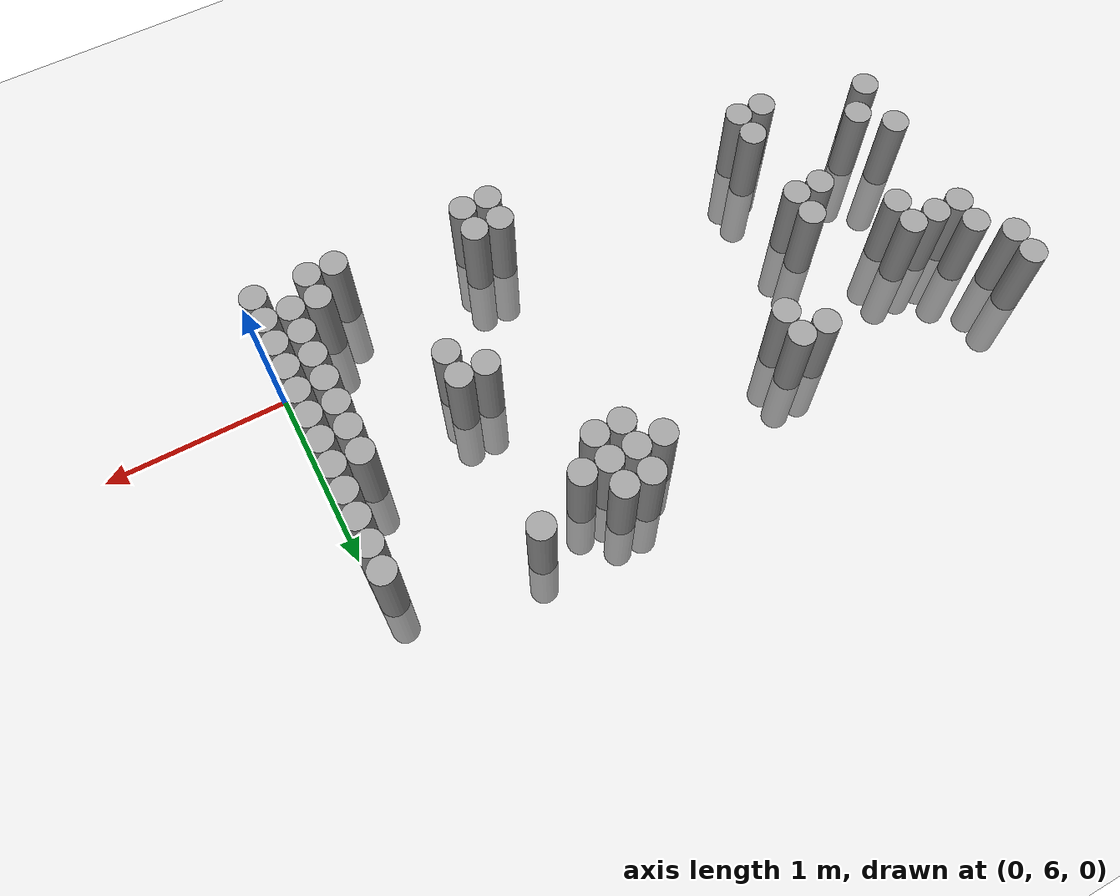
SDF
<sdf version="1.6">
 <world name="default">
  <model name="ground_plane">
   <static>1</static>
   <static>1</static>
   <link name="link">
    <collision name="collision">
     <geometry><plane><normal>0 0 1</normal><size>100 100</size></plane></geometry>
     <surface><friction><ode><mu>100</mu><mu2>50</mu2></ode></friction></surface>
    </collision>
    <visual name="visual">
     <cast_shadows>0</cast_shadows>
     <geometry><plane><normal>0 0 1</normal><size>100 100</size></plane></geometry>
     <material>
      <script><uri>file://media/materials/scripts/gazebo.material</uri><name>Gazebo/Grey</name></script>
     </material>
    </visual>
   </link>
  </model>
  <model name="unit_cylinder_163">
   <static>1</static>
   <pose>-3.825000 7.125000 0.000000 0.000000 0.000000 0.000000</pose>
   <link name="link">
    <inertial>
     <mass>1</mass>
     <inertia><ixx>0.145833</ixx><ixy>0</ixy><ixz>0</ixz><iyy>0.145833</iyy><iyz>0</iyz><izz>0.125</izz></inertia>
    </inertial>
    <collision name="collision">
     <geometry><cylinder><radius>0.075000</radius><length>1</length></cylinder></geometry>
    </collision>
    <visual name="visual">
     <geometry><cylinder><radius>0.075000</radius><length>1</length></cylinder></geometry>
     <material>
      <script><name>Gazebo/Grey</name><uri>file://media/materials/scripts/gazebo.material</uri></script>
     </material>
    </visual>
   </link>
  </model>
  <model name="unit_cylinder_164">
   <static>1</static>
   <pose>-3.825000 7.275000 0.000000 0.000000 0.000000 0.000000</pose>
   <link name="link">
    <inertial>
     <mass>1</mass>
     <inertia><ixx>0.145833</ixx><ixy>0</ixy><ixz>0</ixz><iyy>0.145833</iyy><iyz>0</iyz><izz>0.125</izz></inertia>
    </inertial>
    <collision name="collision">
     <geometry><cylinder><radius>0.075000</radius><length>1</length></cylinder></geometry>
    </collision>
    <visual name="visual">
     <geometry><cylinder><radius>0.075000</radius><length>1</length></cylinder></geometry>
     <material>
      <script><name>Gazebo/Grey</name><uri>file://media/materials/scripts/gazebo.material</uri></script>
     </material>
    </visual>
   </link>
  </model>
  <model name="unit_cylinder_170">
   <static>1</static>
   <pose>-3.675000 5.925000 0.000000 0.000000 0.000000 0.000000</pose>
   <link name="link">
    <inertial>
     <mass>1</mass>
     <inertia><ixx>0.145833</ixx><ixy>0</ixy><ixz>0</ixz><iyy>0.145833</iyy><iyz>0</iyz><izz>0.125</izz></inertia>
    </inertial>
    <collision name="collision">
     <geometry><cylinder><radius>0.075000</radius><length>1</length></cylinder></geometry>
    </collision>
    <visual name="visual">
     <geometry><cylinder><radius>0.075000</radius><length>1</length></cylinder></geometry>
     <material>
      <script><name>Gazebo/Grey</name><uri>file://media/materials/scripts/gazebo.material</uri></script>
     </material>
    </visual>
   </link>
  </model>
  <model name="unit_cylinder_171">
   <static>1</static>
   <pose>-3.675000 6.225000 0.000000 0.000000 0.000000 0.000000</pose>
   <link name="link">
    <inertial>
     <mass>1</mass>
     <inertia><ixx>0.145833</ixx><ixy>0</ixy><ixz>0</ixz><iyy>0.145833</iyy><iyz>0</iyz><izz>0.125</izz></inertia>
    </inertial>
    <collision name="collision">
     <geometry><cylinder><radius>0.075000</radius><length>1</length></cylinder></geometry>
    </collision>
    <visual name="visual">
     <geometry><cylinder><radius>0.075000</radius><length>1</length></cylinder></geometry>
     <material>
      <script><name>Gazebo/Grey</name><uri>file://media/materials/scripts/gazebo.material</uri></script>
     </material>
    </visual>
   </link>
  </model>
  <model name="unit_cylinder_172">
   <static>1</static>
   <pose>-3.675000 6.825000 0.000000 0.000000 0.000000 0.000000</pose>
   <link name="link">
    <inertial>
     <mass>1</mass>
     <inertia><ixx>0.145833</ixx><ixy>0</ixy><ixz>0</ixz><iyy>0.145833</iyy><iyz>0</iyz><izz>0.125</izz></inertia>
    </inertial>
    <collision name="collision">
     <geometry><cylinder><radius>0.075000</radius><length>1</length></cylinder></geometry>
    </collision>
    <visual name="visual">
     <geometry><cylinder><radius>0.075000</radius><length>1</length></cylinder></geometry>
     <material>
      <script><name>Gazebo/Grey</name><uri>file://media/materials/scripts/gazebo.material</uri></script>
     </material>
    </visual>
   </link>
  </model>
  <model name="unit_cylinder_173">
   <static>1</static>
   <pose>-3.675000 6.975000 0.000000 0.000000 0.000000 0.000000</pose>
   <link name="link">
    <inertial>
     <mass>1</mass>
     <inertia><ixx>0.145833</ixx><ixy>0</ixy><ixz>0</ixz><iyy>0.145833</iyy><iyz>0</iyz><izz>0.125</izz></inertia>
    </inertial>
    <collision name="collision">
     <geometry><cylinder><radius>0.075000</radius><length>1</length></cylinder></geometry>
    </collision>
    <visual name="visual">
     <geometry><cylinder><radius>0.075000</radius><length>1</length></cylinder></geometry>
     <material>
      <script><name>Gazebo/Grey</name><uri>file://media/materials/scripts/gazebo.material</uri></script>
     </material>
    </visual>
   </link>
  </model>
  <model name="unit_cylinder_177">
   <static>1</static>
   <pose>-3.525000 6.075000 0.000000 0.000000 0.000000 0.000000</pose>
   <link name="link">
    <inertial>
     <mass>1</mass>
     <inertia><ixx>0.145833</ixx><ixy>0</ixy><ixz>0</ixz><iyy>0.145833</iyy><iyz>0</iyz><izz>0.125</izz></inertia>
    </inertial>
    <collision name="collision">
     <geometry><cylinder><radius>0.075000</radius><length>1</length></cylinder></geometry>
    </collision>
    <visual name="visual">
     <geometry><cylinder><radius>0.075000</radius><length>1</length></cylinder></geometry>
     <material>
      <script><name>Gazebo/Grey</name><uri>file://media/materials/scripts/gazebo.material</uri></script>
     </material>
    </visual>
   </link>
  </model>
  <model name="unit_cylinder_178">
   <static>1</static>
   <pose>-3.525000 6.825000 0.000000 0.000000 0.000000 0.000000</pose>
   <link name="link">
    <inertial>
     <mass>1</mass>
     <inertia><ixx>0.145833</ixx><ixy>0</ixy><ixz>0</ixz><iyy>0.145833</iyy><iyz>0</iyz><izz>0.125</izz></inertia>
    </inertial>
    <collision name="collision">
     <geometry><cylinder><radius>0.075000</radius><length>1</length></cylinder></geometry>
    </collision>
    <visual name="visual">
     <geometry><cylinder><radius>0.075000</radius><length>1</length></cylinder></geometry>
     <material>
      <script><name>Gazebo/Grey</name><uri>file://media/materials/scripts/gazebo.material</uri></script>
     </material>
    </visual>
   </link>
  </model>
  <model name="unit_cylinder_181">
   <static>1</static>
   <pose>-3.375000 6.675000 0.000000 0.000000 0.000000 0.000000</pose>
   <link name="link">
    <inertial>
     <mass>1</mass>
     <inertia><ixx>0.145833</ixx><ixy>0</ixy><ixz>0</ixz><iyy>0.145833</iyy><iyz>0</iyz><izz>0.125</izz></inertia>
    </inertial>
    <collision name="collision">
     <geometry><cylinder><radius>0.075000</radius><length>1</length></cylinder></geometry>
    </collision>
    <visual name="visual">
     <geometry><cylinder><radius>0.075000</radius><length>1</length></cylinder></geometry>
     <material>
      <script><name>Gazebo/Grey</name><uri>file://media/materials/scripts/gazebo.material</uri></script>
     </material>
    </visual>
   </link>
  </model>
  <model name="unit_cylinder_182">
   <static>1</static>
   <pose>-3.375000 6.825000 0.000000 0.000000 0.000000 0.000000</pose>
   <link name="link">
    <inertial>
     <mass>1</mass>
     <inertia><ixx>0.145833</ixx><ixy>0</ixy><ixz>0</ixz><iyy>0.145833</iyy><iyz>0</iyz><izz>0.125</izz></inertia>
    </inertial>
    <collision name="collision">
     <geometry><cylinder><radius>0.075000</radius><length>1</length></cylinder></geometry>
    </collision>
    <visual name="visual">
     <geometry><cylinder><radius>0.075000</radius><length>1</length></cylinder></geometry>
     <material>
      <script><name>Gazebo/Grey</name><uri>file://media/materials/scripts/gazebo.material</uri></script>
     </material>
    </visual>
   </link>
  </model>
  <model name="unit_cylinder_184">
   <static>1</static>
   <pose>-3.075000 5.775000 0.000000 0.000000 0.000000 0.000000</pose>
   <link name="link">
    <inertial>
     <mass>1</mass>
     <inertia><ixx>0.145833</ixx><ixy>0</ixy><ixz>0</ixz><iyy>0.145833</iyy><iyz>0</iyz><izz>0.125</izz></inertia>
    </inertial>
    <collision name="collision">
     <geometry><cylinder><radius>0.075000</radius><length>1</length></cylinder></geometry>
    </collision>
    <visual name="visual">
     <geometry><cylinder><radius>0.075000</radius><length>1</length></cylinder></geometry>
     <material>
      <script><name>Gazebo/Grey</name><uri>file://media/materials/scripts/gazebo.material</uri></script>
     </material>
    </visual>
   </link>
  </model>
  <model name="unit_cylinder_185">
   <static>1</static>
   <pose>-3.075000 6.375000 0.000000 0.000000 0.000000 0.000000</pose>
   <link name="link">
    <inertial>
     <mass>1</mass>
     <inertia><ixx>0.145833</ixx><ixy>0</ixy><ixz>0</ixz><iyy>0.145833</iyy><iyz>0</iyz><izz>0.125</izz></inertia>
    </inertial>
    <collision name="collision">
     <geometry><cylinder><radius>0.075000</radius><length>1</length></cylinder></geometry>
    </collision>
    <visual name="visual">
     <geometry><cylinder><radius>0.075000</radius><length>1</length></cylinder></geometry>
     <material>
      <script><name>Gazebo/Grey</name><uri>file://media/materials/scripts/gazebo.material</uri></script>
     </material>
    </visual>
   </link>
  </model>
  <model name="unit_cylinder_188">
   <static>1</static>
   <pose>-2.925000 5.775000 0.000000 0.000000 0.000000 0.000000</pose>
   <link name="link">
    <inertial>
     <mass>1</mass>
     <inertia><ixx>0.145833</ixx><ixy>0</ixy><ixz>0</ixz><iyy>0.145833</iyy><iyz>0</iyz><izz>0.125</izz></inertia>
    </inertial>
    <collision name="collision">
     <geometry><cylinder><radius>0.075000</radius><length>1</length></cylinder></geometry>
    </collision>
    <visual name="visual">
     <geometry><cylinder><radius>0.075000</radius><length>1</length></cylinder></geometry>
     <material>
      <script><name>Gazebo/Grey</name><uri>file://media/materials/scripts/gazebo.material</uri></script>
     </material>
    </visual>
   </link>
  </model>
  <model name="unit_cylinder_189">
   <static>1</static>
   <pose>-2.925000 5.925000 0.000000 0.000000 0.000000 0.000000</pose>
   <link name="link">
    <inertial>
     <mass>1</mass>
     <inertia><ixx>0.145833</ixx><ixy>0</ixy><ixz>0</ixz><iyy>0.145833</iyy><iyz>0</iyz><izz>0.125</izz></inertia>
    </inertial>
    <collision name="collision">
     <geometry><cylinder><radius>0.075000</radius><length>1</length></cylinder></geometry>
    </collision>
    <visual name="visual">
     <geometry><cylinder><radius>0.075000</radius><length>1</length></cylinder></geometry>
     <material>
      <script><name>Gazebo/Grey</name><uri>file://media/materials/scripts/gazebo.material</uri></script>
     </material>
    </visual>
   </link>
  </model>
  <model name="unit_cylinder_190">
   <static>1</static>
   <pose>-2.925000 6.375000 0.000000 0.000000 0.000000 0.000000</pose>
   <link name="link">
    <inertial>
     <mass>1</mass>
     <inertia><ixx>0.145833</ixx><ixy>0</ixy><ixz>0</ixz><iyy>0.145833</iyy><iyz>0</iyz><izz>0.125</izz></inertia>
    </inertial>
    <collision name="collision">
     <geometry><cylinder><radius>0.075000</radius><length>1</length></cylinder></geometry>
    </collision>
    <visual name="visual">
     <geometry><cylinder><radius>0.075000</radius><length>1</length></cylinder></geometry>
     <material>
      <script><name>Gazebo/Grey</name><uri>file://media/materials/scripts/gazebo.material</uri></script>
     </material>
    </visual>
   </link>
  </model>
  <model name="unit_cylinder_191">
   <static>1</static>
   <pose>-2.925000 6.525000 0.000000 0.000000 0.000000 0.000000</pose>
   <link name="link">
    <inertial>
     <mass>1</mass>
     <inertia><ixx>0.145833</ixx><ixy>0</ixy><ixz>0</ixz><iyy>0.145833</iyy><iyz>0</iyz><izz>0.125</izz></inertia>
    </inertial>
    <collision name="collision">
     <geometry><cylinder><radius>0.075000</radius><length>1</length></cylinder></geometry>
    </collision>
    <visual name="visual">
     <geometry><cylinder><radius>0.075000</radius><length>1</length></cylinder></geometry>
     <material>
      <script><name>Gazebo/Grey</name><uri>file://media/materials/scripts/gazebo.material</uri></script>
     </material>
    </visual>
   </link>
  </model>
  <model name="unit_cylinder_192">
   <static>1</static>
   <pose>-2.625000 7.125000 0.000000 0.000000 0.000000 0.000000</pose>
   <link name="link">
    <inertial>
     <mass>1</mass>
     <inertia><ixx>0.145833</ixx><ixy>0</ixy><ixz>0</ixz><iyy>0.145833</iyy><iyz>0</iyz><izz>0.125</izz></inertia>
    </inertial>
    <collision name="collision">
     <geometry><cylinder><radius>0.075000</radius><length>1</length></cylinder></geometry>
    </collision>
    <visual name="visual">
     <geometry><cylinder><radius>0.075000</radius><length>1</length></cylinder></geometry>
     <material>
      <script><name>Gazebo/Grey</name><uri>file://media/materials/scripts/gazebo.material</uri></script>
     </material>
    </visual>
   </link>
  </model>
  <model name="unit_cylinder_193">
   <static>1</static>
   <pose>-2.475000 6.975000 0.000000 0.000000 0.000000 0.000000</pose>
   <link name="link">
    <inertial>
     <mass>1</mass>
     <inertia><ixx>0.145833</ixx><ixy>0</ixy><ixz>0</ixz><iyy>0.145833</iyy><iyz>0</iyz><izz>0.125</izz></inertia>
    </inertial>
    <collision name="collision">
     <geometry><cylinder><radius>0.075000</radius><length>1</length></cylinder></geometry>
    </collision>
    <visual name="visual">
     <geometry><cylinder><radius>0.075000</radius><length>1</length></cylinder></geometry>
     <material>
      <script><name>Gazebo/Grey</name><uri>file://media/materials/scripts/gazebo.material</uri></script>
     </material>
    </visual>
   </link>
  </model>
  <model name="unit_cylinder_194">
   <static>1</static>
   <pose>-2.475000 7.125000 0.000000 0.000000 0.000000 0.000000</pose>
   <link name="link">
    <inertial>
     <mass>1</mass>
     <inertia><ixx>0.145833</ixx><ixy>0</ixy><ixz>0</ixz><iyy>0.145833</iyy><iyz>0</iyz><izz>0.125</izz></inertia>
    </inertial>
    <collision name="collision">
     <geometry><cylinder><radius>0.075000</radius><length>1</length></cylinder></geometry>
    </collision>
    <visual name="visual">
     <geometry><cylinder><radius>0.075000</radius><length>1</length></cylinder></geometry>
     <material>
      <script><name>Gazebo/Grey</name><uri>file://media/materials/scripts/gazebo.material</uri></script>
     </material>
    </visual>
   </link>
  </model>
  <model name="unit_cylinder_195">
   <static>1</static>
   <pose>-1.575000 7.275000 0.000000 0.000000 0.000000 0.000000</pose>
   <link name="link">
    <inertial>
     <mass>1</mass>
     <inertia><ixx>0.145833</ixx><ixy>0</ixy><ixz>0</ixz><iyy>0.145833</iyy><iyz>0</iyz><izz>0.125</izz></inertia>
    </inertial>
    <collision name="collision">
     <geometry><cylinder><radius>0.075000</radius><length>1</length></cylinder></geometry>
    </collision>
    <visual name="visual">
     <geometry><cylinder><radius>0.075000</radius><length>1</length></cylinder></geometry>
     <material>
      <script><name>Gazebo/Grey</name><uri>file://media/materials/scripts/gazebo.material</uri></script>
     </material>
    </visual>
   </link>
  </model>
  <model name="unit_cylinder_198">
   <static>1</static>
   <pose>-1.425000 5.625000 0.000000 0.000000 0.000000 0.000000</pose>
   <link name="link">
    <inertial>
     <mass>1</mass>
     <inertia><ixx>0.145833</ixx><ixy>0</ixy><ixz>0</ixz><iyy>0.145833</iyy><iyz>0</iyz><izz>0.125</izz></inertia>
    </inertial>
    <collision name="collision">
     <geometry><cylinder><radius>0.075000</radius><length>1</length></cylinder></geometry>
    </collision>
    <visual name="visual">
     <geometry><cylinder><radius>0.075000</radius><length>1</length></cylinder></geometry>
     <material>
      <script><name>Gazebo/Grey</name><uri>file://media/materials/scripts/gazebo.material</uri></script>
     </material>
    </visual>
   </link>
  </model>
  <model name="unit_cylinder_199">
   <static>1</static>
   <pose>-1.425000 5.775000 0.000000 0.000000 0.000000 0.000000</pose>
   <link name="link">
    <inertial>
     <mass>1</mass>
     <inertia><ixx>0.145833</ixx><ixy>0</ixy><ixz>0</ixz><iyy>0.145833</iyy><iyz>0</iyz><izz>0.125</izz></inertia>
    </inertial>
    <collision name="collision">
     <geometry><cylinder><radius>0.075000</radius><length>1</length></cylinder></geometry>
    </collision>
    <visual name="visual">
     <geometry><cylinder><radius>0.075000</radius><length>1</length></cylinder></geometry>
     <material>
      <script><name>Gazebo/Grey</name><uri>file://media/materials/scripts/gazebo.material</uri></script>
     </material>
    </visual>
   </link>
  </model>
  <model name="unit_cylinder_200">
   <static>1</static>
   <pose>-1.425000 7.125000 0.000000 0.000000 0.000000 0.000000</pose>
   <link name="link">
    <inertial>
     <mass>1</mass>
     <inertia><ixx>0.145833</ixx><ixy>0</ixy><ixz>0</ixz><iyy>0.145833</iyy><iyz>0</iyz><izz>0.125</izz></inertia>
    </inertial>
    <collision name="collision">
     <geometry><cylinder><radius>0.075000</radius><length>1</length></cylinder></geometry>
    </collision>
    <visual name="visual">
     <geometry><cylinder><radius>0.075000</radius><length>1</length></cylinder></geometry>
     <material>
      <script><name>Gazebo/Grey</name><uri>file://media/materials/scripts/gazebo.material</uri></script>
     </material>
    </visual>
   </link>
  </model>
  <model name="unit_cylinder_201">
   <static>1</static>
   <pose>-1.425000 7.275000 0.000000 0.000000 0.000000 0.000000</pose>
   <link name="link">
    <inertial>
     <mass>1</mass>
     <inertia><ixx>0.145833</ixx><ixy>0</ixy><ixz>0</ixz><iyy>0.145833</iyy><iyz>0</iyz><izz>0.125</izz></inertia>
    </inertial>
    <collision name="collision">
     <geometry><cylinder><radius>0.075000</radius><length>1</length></cylinder></geometry>
    </collision>
    <visual name="visual">
     <geometry><cylinder><radius>0.075000</radius><length>1</length></cylinder></geometry>
     <material>
      <script><name>Gazebo/Grey</name><uri>file://media/materials/scripts/gazebo.material</uri></script>
     </material>
    </visual>
   </link>
  </model>
  <model name="unit_cylinder_202">
   <static>1</static>
   <pose>-1.425000 7.425000 0.000000 0.000000 0.000000 0.000000</pose>
   <link name="link">
    <inertial>
     <mass>1</mass>
     <inertia><ixx>0.145833</ixx><ixy>0</ixy><ixz>0</ixz><iyy>0.145833</iyy><iyz>0</iyz><izz>0.125</izz></inertia>
    </inertial>
    <collision name="collision">
     <geometry><cylinder><radius>0.075000</radius><length>1</length></cylinder></geometry>
    </collision>
    <visual name="visual">
     <geometry><cylinder><radius>0.075000</radius><length>1</length></cylinder></geometry>
     <material>
      <script><name>Gazebo/Grey</name><uri>file://media/materials/scripts/gazebo.material</uri></script>
     </material>
    </visual>
   </link>
  </model>
  <model name="unit_cylinder_206">
   <static>1</static>
   <pose>-1.275000 5.625000 0.000000 0.000000 0.000000 0.000000</pose>
   <link name="link">
    <inertial>
     <mass>1</mass>
     <inertia><ixx>0.145833</ixx><ixy>0</ixy><ixz>0</ixz><iyy>0.145833</iyy><iyz>0</iyz><izz>0.125</izz></inertia>
    </inertial>
    <collision name="collision">
     <geometry><cylinder><radius>0.075000</radius><length>1</length></cylinder></geometry>
    </collision>
    <visual name="visual">
     <geometry><cylinder><radius>0.075000</radius><length>1</length></cylinder></geometry>
     <material>
      <script><name>Gazebo/Grey</name><uri>file://media/materials/scripts/gazebo.material</uri></script>
     </material>
    </visual>
   </link>
  </model>
  <model name="unit_cylinder_207">
   <static>1</static>
   <pose>-1.275000 5.775000 0.000000 0.000000 0.000000 0.000000</pose>
   <link name="link">
    <inertial>
     <mass>1</mass>
     <inertia><ixx>0.145833</ixx><ixy>0</ixy><ixz>0</ixz><iyy>0.145833</iyy><iyz>0</iyz><izz>0.125</izz></inertia>
    </inertial>
    <collision name="collision">
     <geometry><cylinder><radius>0.075000</radius><length>1</length></cylinder></geometry>
    </collision>
    <visual name="visual">
     <geometry><cylinder><radius>0.075000</radius><length>1</length></cylinder></geometry>
     <material>
      <script><name>Gazebo/Grey</name><uri>file://media/materials/scripts/gazebo.material</uri></script>
     </material>
    </visual>
   </link>
  </model>
  <model name="unit_cylinder_208">
   <static>1</static>
   <pose>-1.275000 7.125000 0.000000 0.000000 0.000000 0.000000</pose>
   <link name="link">
    <inertial>
     <mass>1</mass>
     <inertia><ixx>0.145833</ixx><ixy>0</ixy><ixz>0</ixz><iyy>0.145833</iyy><iyz>0</iyz><izz>0.125</izz></inertia>
    </inertial>
    <collision name="collision">
     <geometry><cylinder><radius>0.075000</radius><length>1</length></cylinder></geometry>
    </collision>
    <visual name="visual">
     <geometry><cylinder><radius>0.075000</radius><length>1</length></cylinder></geometry>
     <material>
      <script><name>Gazebo/Grey</name><uri>file://media/materials/scripts/gazebo.material</uri></script>
     </material>
    </visual>
   </link>
  </model>
  <model name="unit_cylinder_209">
   <static>1</static>
   <pose>-1.275000 7.275000 0.000000 0.000000 0.000000 0.000000</pose>
   <link name="link">
    <inertial>
     <mass>1</mass>
     <inertia><ixx>0.145833</ixx><ixy>0</ixy><ixz>0</ixz><iyy>0.145833</iyy><iyz>0</iyz><izz>0.125</izz></inertia>
    </inertial>
    <collision name="collision">
     <geometry><cylinder><radius>0.075000</radius><length>1</length></cylinder></geometry>
    </collision>
    <visual name="visual">
     <geometry><cylinder><radius>0.075000</radius><length>1</length></cylinder></geometry>
     <material>
      <script><name>Gazebo/Grey</name><uri>file://media/materials/scripts/gazebo.material</uri></script>
     </material>
    </visual>
   </link>
  </model>
  <model name="unit_cylinder_210">
   <static>1</static>
   <pose>-1.275000 7.425000 0.000000 0.000000 0.000000 0.000000</pose>
   <link name="link">
    <inertial>
     <mass>1</mass>
     <inertia><ixx>0.145833</ixx><ixy>0</ixy><ixz>0</ixz><iyy>0.145833</iyy><iyz>0</iyz><izz>0.125</izz></inertia>
    </inertial>
    <collision name="collision">
     <geometry><cylinder><radius>0.075000</radius><length>1</length></cylinder></geometry>
    </collision>
    <visual name="visual">
     <geometry><cylinder><radius>0.075000</radius><length>1</length></cylinder></geometry>
     <material>
      <script><name>Gazebo/Grey</name><uri>file://media/materials/scripts/gazebo.material</uri></script>
     </material>
    </visual>
   </link>
  </model>
  <model name="unit_cylinder_213">
   <static>1</static>
   <pose>-1.125000 7.275000 0.000000 0.000000 0.000000 0.000000</pose>
   <link name="link">
    <inertial>
     <mass>1</mass>
     <inertia><ixx>0.145833</ixx><ixy>0</ixy><ixz>0</ixz><iyy>0.145833</iyy><iyz>0</iyz><izz>0.125</izz></inertia>
    </inertial>
    <collision name="collision">
     <geometry><cylinder><radius>0.075000</radius><length>1</length></cylinder></geometry>
    </collision>
    <visual name="visual">
     <geometry><cylinder><radius>0.075000</radius><length>1</length></cylinder></geometry>
     <material>
      <script><name>Gazebo/Grey</name><uri>file://media/materials/scripts/gazebo.material</uri></script>
     </material>
    </visual>
   </link>
  </model>
  <model name="unit_cylinder_216">
   <static>1</static>
   <pose>-0.975000 6.525000 0.000000 0.000000 0.000000 0.000000</pose>
   <link name="link">
    <inertial>
     <mass>1</mass>
     <inertia><ixx>0.145833</ixx><ixy>0</ixy><ixz>0</ixz><iyy>0.145833</iyy><iyz>0</iyz><izz>0.125</izz></inertia>
    </inertial>
    <collision name="collision">
     <geometry><cylinder><radius>0.075000</radius><length>1</length></cylinder></geometry>
    </collision>
    <visual name="visual">
     <geometry><cylinder><radius>0.075000</radius><length>1</length></cylinder></geometry>
     <material>
      <script><name>Gazebo/Grey</name><uri>file://media/materials/scripts/gazebo.material</uri></script>
     </material>
    </visual>
   </link>
  </model>
  <model name="unit_cylinder_221">
   <static>1</static>
   <pose>-0.825000 6.375000 0.000000 0.000000 0.000000 0.000000</pose>
   <link name="link">
    <inertial>
     <mass>1</mass>
     <inertia><ixx>0.145833</ixx><ixy>0</ixy><ixz>0</ixz><iyy>0.145833</iyy><iyz>0</iyz><izz>0.125</izz></inertia>
    </inertial>
    <collision name="collision">
     <geometry><cylinder><radius>0.075000</radius><length>1</length></cylinder></geometry>
    </collision>
    <visual name="visual">
     <geometry><cylinder><radius>0.075000</radius><length>1</length></cylinder></geometry>
     <material>
      <script><name>Gazebo/Grey</name><uri>file://media/materials/scripts/gazebo.material</uri></script>
     </material>
    </visual>
   </link>
  </model>
  <model name="unit_cylinder_222">
   <static>1</static>
   <pose>-0.825000 6.525000 0.000000 0.000000 0.000000 0.000000</pose>
   <link name="link">
    <inertial>
     <mass>1</mass>
     <inertia><ixx>0.145833</ixx><ixy>0</ixy><ixz>0</ixz><iyy>0.145833</iyy><iyz>0</iyz><izz>0.125</izz></inertia>
    </inertial>
    <collision name="collision">
     <geometry><cylinder><radius>0.075000</radius><length>1</length></cylinder></geometry>
    </collision>
    <visual name="visual">
     <geometry><cylinder><radius>0.075000</radius><length>1</length></cylinder></geometry>
     <material>
      <script><name>Gazebo/Grey</name><uri>file://media/materials/scripts/gazebo.material</uri></script>
     </material>
    </visual>
   </link>
  </model>
  <model name="unit_cylinder_223">
   <static>1</static>
   <pose>-0.825000 7.425000 0.000000 0.000000 0.000000 0.000000</pose>
   <link name="link">
    <inertial>
     <mass>1</mass>
     <inertia><ixx>0.145833</ixx><ixy>0</ixy><ixz>0</ixz><iyy>0.145833</iyy><iyz>0</iyz><izz>0.125</izz></inertia>
    </inertial>
    <collision name="collision">
     <geometry><cylinder><radius>0.075000</radius><length>1</length></cylinder></geometry>
    </collision>
    <visual name="visual">
     <geometry><cylinder><radius>0.075000</radius><length>1</length></cylinder></geometry>
     <material>
      <script><name>Gazebo/Grey</name><uri>file://media/materials/scripts/gazebo.material</uri></script>
     </material>
    </visual>
   </link>
  </model>
  <model name="unit_cylinder_233">
   <static>1</static>
   <pose>-0.525000 5.625000 0.000000 0.000000 0.000000 0.000000</pose>
   <link name="link">
    <inertial>
     <mass>1</mass>
     <inertia><ixx>0.145833</ixx><ixy>0</ixy><ixz>0</ixz><iyy>0.145833</iyy><iyz>0</iyz><izz>0.125</izz></inertia>
    </inertial>
    <collision name="collision">
     <geometry><cylinder><radius>0.075000</radius><length>1</length></cylinder></geometry>
    </collision>
    <visual name="visual">
     <geometry><cylinder><radius>0.075000</radius><length>1</length></cylinder></geometry>
     <material>
      <script><name>Gazebo/Grey</name><uri>file://media/materials/scripts/gazebo.material</uri></script>
     </material>
    </visual>
   </link>
  </model>
  <model name="unit_cylinder_237">
   <static>1</static>
   <pose>-0.375000 5.625000 0.000000 0.000000 0.000000 0.000000</pose>
   <link name="link">
    <inertial>
     <mass>1</mass>
     <inertia><ixx>0.145833</ixx><ixy>0</ixy><ixz>0</ixz><iyy>0.145833</iyy><iyz>0</iyz><izz>0.125</izz></inertia>
    </inertial>
    <collision name="collision">
     <geometry><cylinder><radius>0.075000</radius><length>1</length></cylinder></geometry>
    </collision>
    <visual name="visual">
     <geometry><cylinder><radius>0.075000</radius><length>1</length></cylinder></geometry>
     <material>
      <script><name>Gazebo/Grey</name><uri>file://media/materials/scripts/gazebo.material</uri></script>
     </material>
    </visual>
   </link>
  </model>
  <model name="unit_cylinder_238">
   <static>1</static>
   <pose>-0.375000 5.775000 0.000000 0.000000 0.000000 0.000000</pose>
   <link name="link">
    <inertial>
     <mass>1</mass>
     <inertia><ixx>0.145833</ixx><ixy>0</ixy><ixz>0</ixz><iyy>0.145833</iyy><iyz>0</iyz><izz>0.125</izz></inertia>
    </inertial>
    <collision name="collision">
     <geometry><cylinder><radius>0.075000</radius><length>1</length></cylinder></geometry>
    </collision>
    <visual name="visual">
     <geometry><cylinder><radius>0.075000</radius><length>1</length></cylinder></geometry>
     <material>
      <script><name>Gazebo/Grey</name><uri>file://media/materials/scripts/gazebo.material</uri></script>
     </material>
    </visual>
   </link>
  </model>
  <model name="unit_cylinder_246">
   <static>1</static>
   <pose>-0.225000 5.775000 0.000000 0.000000 0.000000 0.000000</pose>
   <link name="link">
    <inertial>
     <mass>1</mass>
     <inertia><ixx>0.145833</ixx><ixy>0</ixy><ixz>0</ixz><iyy>0.145833</iyy><iyz>0</iyz><izz>0.125</izz></inertia>
    </inertial>
    <collision name="collision">
     <geometry><cylinder><radius>0.075000</radius><length>1</length></cylinder></geometry>
    </collision>
    <visual name="visual">
     <geometry><cylinder><radius>0.075000</radius><length>1</length></cylinder></geometry>
     <material>
      <script><name>Gazebo/Grey</name><uri>file://media/materials/scripts/gazebo.material</uri></script>
     </material>
    </visual>
   </link>
  </model>
  <model name="unit_cylinder_247">
   <static>1</static>
   <pose>-0.225000 5.925000 0.000000 0.000000 0.000000 0.000000</pose>
   <link name="link">
    <inertial>
     <mass>1</mass>
     <inertia><ixx>0.145833</ixx><ixy>0</ixy><ixz>0</ixz><iyy>0.145833</iyy><iyz>0</iyz><izz>0.125</izz></inertia>
    </inertial>
    <collision name="collision">
     <geometry><cylinder><radius>0.075000</radius><length>1</length></cylinder></geometry>
    </collision>
    <visual name="visual">
     <geometry><cylinder><radius>0.075000</radius><length>1</length></cylinder></geometry>
     <material>
      <script><name>Gazebo/Grey</name><uri>file://media/materials/scripts/gazebo.material</uri></script>
     </material>
    </visual>
   </link>
  </model>
  <model name="unit_cylinder_248">
   <static>1</static>
   <pose>-0.225000 6.075000 0.000000 0.000000 0.000000 0.000000</pose>
   <link name="link">
    <inertial>
     <mass>1</mass>
     <inertia><ixx>0.145833</ixx><ixy>0</ixy><ixz>0</ixz><iyy>0.145833</iyy><iyz>0</iyz><izz>0.125</izz></inertia>
    </inertial>
    <collision name="collision">
     <geometry><cylinder><radius>0.075000</radius><length>1</length></cylinder></geometry>
    </collision>
    <visual name="visual">
     <geometry><cylinder><radius>0.075000</radius><length>1</length></cylinder></geometry>
     <material>
      <script><name>Gazebo/Grey</name><uri>file://media/materials/scripts/gazebo.material</uri></script>
     </material>
    </visual>
   </link>
  </model>
  <model name="unit_cylinder_249">
   <static>1</static>
   <pose>-0.225000 6.225000 0.000000 0.000000 0.000000 0.000000</pose>
   <link name="link">
    <inertial>
     <mass>1</mass>
     <inertia><ixx>0.145833</ixx><ixy>0</ixy><ixz>0</ixz><iyy>0.145833</iyy><iyz>0</iyz><izz>0.125</izz></inertia>
    </inertial>
    <collision name="collision">
     <geometry><cylinder><radius>0.075000</radius><length>1</length></cylinder></geometry>
    </collision>
    <visual name="visual">
     <geometry><cylinder><radius>0.075000</radius><length>1</length></cylinder></geometry>
     <material>
      <script><name>Gazebo/Grey</name><uri>file://media/materials/scripts/gazebo.material</uri></script>
     </material>
    </visual>
   </link>
  </model>
  <model name="unit_cylinder_250">
   <static>1</static>
   <pose>-0.225000 6.375000 0.000000 0.000000 0.000000 0.000000</pose>
   <link name="link">
    <inertial>
     <mass>1</mass>
     <inertia><ixx>0.145833</ixx><ixy>0</ixy><ixz>0</ixz><iyy>0.145833</iyy><iyz>0</iyz><izz>0.125</izz></inertia>
    </inertial>
    <collision name="collision">
     <geometry><cylinder><radius>0.075000</radius><length>1</length></cylinder></geometry>
    </collision>
    <visual name="visual">
     <geometry><cylinder><radius>0.075000</radius><length>1</length></cylinder></geometry>
     <material>
      <script><name>Gazebo/Grey</name><uri>file://media/materials/scripts/gazebo.material</uri></script>
     </material>
    </visual>
   </link>
  </model>
  <model name="unit_cylinder_251">
   <static>1</static>
   <pose>-0.225000 6.525000 0.000000 0.000000 0.000000 0.000000</pose>
   <link name="link">
    <inertial>
     <mass>1</mass>
     <inertia><ixx>0.145833</ixx><ixy>0</ixy><ixz>0</ixz><iyy>0.145833</iyy><iyz>0</iyz><izz>0.125</izz></inertia>
    </inertial>
    <collision name="collision">
     <geometry><cylinder><radius>0.075000</radius><length>1</length></cylinder></geometry>
    </collision>
    <visual name="visual">
     <geometry><cylinder><radius>0.075000</radius><length>1</length></cylinder></geometry>
     <material>
      <script><name>Gazebo/Grey</name><uri>file://media/materials/scripts/gazebo.material</uri></script>
     </material>
    </visual>
   </link>
  </model>
  <model name="unit_cylinder_252">
   <static>1</static>
   <pose>-0.225000 6.675000 0.000000 0.000000 0.000000 0.000000</pose>
   <link name="link">
    <inertial>
     <mass>1</mass>
     <inertia><ixx>0.145833</ixx><ixy>0</ixy><ixz>0</ixz><iyy>0.145833</iyy><iyz>0</iyz><izz>0.125</izz></inertia>
    </inertial>
    <collision name="collision">
     <geometry><cylinder><radius>0.075000</radius><length>1</length></cylinder></geometry>
    </collision>
    <visual name="visual">
     <geometry><cylinder><radius>0.075000</radius><length>1</length></cylinder></geometry>
     <material>
      <script><name>Gazebo/Grey</name><uri>file://media/materials/scripts/gazebo.material</uri></script>
     </material>
    </visual>
   </link>
  </model>
  <model name="unit_cylinder_262">
   <static>1</static>
   <pose>-0.075000 5.625000 0.000000 0.000000 0.000000 0.000000</pose>
   <link name="link">
    <inertial>
     <mass>1</mass>
     <inertia><ixx>0.145833</ixx><ixy>0</ixy><ixz>0</ixz><iyy>0.145833</iyy><iyz>0</iyz><izz>0.125</izz></inertia>
    </inertial>
    <collision name="collision">
     <geometry><cylinder><radius>0.075000</radius><length>1</length></cylinder></geometry>
    </collision>
    <visual name="visual">
     <geometry><cylinder><radius>0.075000</radius><length>1</length></cylinder></geometry>
     <material>
      <script><name>Gazebo/Grey</name><uri>file://media/materials/scripts/gazebo.material</uri></script>
     </material>
    </visual>
   </link>
  </model>
  <model name="unit_cylinder_263">
   <static>1</static>
   <pose>-0.075000 5.775000 0.000000 0.000000 0.000000 0.000000</pose>
   <link name="link">
    <inertial>
     <mass>1</mass>
     <inertia><ixx>0.145833</ixx><ixy>0</ixy><ixz>0</ixz><iyy>0.145833</iyy><iyz>0</iyz><izz>0.125</izz></inertia>
    </inertial>
    <collision name="collision">
     <geometry><cylinder><radius>0.075000</radius><length>1</length></cylinder></geometry>
    </collision>
    <visual name="visual">
     <geometry><cylinder><radius>0.075000</radius><length>1</length></cylinder></geometry>
     <material>
      <script><name>Gazebo/Grey</name><uri>file://media/materials/scripts/gazebo.material</uri></script>
     </material>
    </visual>
   </link>
  </model>
  <model name="unit_cylinder_264">
   <static>1</static>
   <pose>-0.075000 5.925000 0.000000 0.000000 0.000000 0.000000</pose>
   <link name="link">
    <inertial>
     <mass>1</mass>
     <inertia><ixx>0.145833</ixx><ixy>0</ixy><ixz>0</ixz><iyy>0.145833</iyy><iyz>0</iyz><izz>0.125</izz></inertia>
    </inertial>
    <collision name="collision">
     <geometry><cylinder><radius>0.075000</radius><length>1</length></cylinder></geometry>
    </collision>
    <visual name="visual">
     <geometry><cylinder><radius>0.075000</radius><length>1</length></cylinder></geometry>
     <material>
      <script><name>Gazebo/Grey</name><uri>file://media/materials/scripts/gazebo.material</uri></script>
     </material>
    </visual>
   </link>
  </model>
  <model name="unit_cylinder_265">
   <static>1</static>
   <pose>-0.075000 6.075000 0.000000 0.000000 0.000000 0.000000</pose>
   <link name="link">
    <inertial>
     <mass>1</mass>
     <inertia><ixx>0.145833</ixx><ixy>0</ixy><ixz>0</ixz><iyy>0.145833</iyy><iyz>0</iyz><izz>0.125</izz></inertia>
    </inertial>
    <collision name="collision">
     <geometry><cylinder><radius>0.075000</radius><length>1</length></cylinder></geometry>
    </collision>
    <visual name="visual">
     <geometry><cylinder><radius>0.075000</radius><length>1</length></cylinder></geometry>
     <material>
      <script><name>Gazebo/Grey</name><uri>file://media/materials/scripts/gazebo.material</uri></script>
     </material>
    </visual>
   </link>
  </model>
  <model name="unit_cylinder_266">
   <static>1</static>
   <pose>-0.075000 6.225000 0.000000 0.000000 0.000000 0.000000</pose>
   <link name="link">
    <inertial>
     <mass>1</mass>
     <inertia><ixx>0.145833</ixx><ixy>0</ixy><ixz>0</ixz><iyy>0.145833</iyy><iyz>0</iyz><izz>0.125</izz></inertia>
    </inertial>
    <collision name="collision">
     <geometry><cylinder><radius>0.075000</radius><length>1</length></cylinder></geometry>
    </collision>
    <visual name="visual">
     <geometry><cylinder><radius>0.075000</radius><length>1</length></cylinder></geometry>
     <material>
      <script><name>Gazebo/Grey</name><uri>file://media/materials/scripts/gazebo.material</uri></script>
     </material>
    </visual>
   </link>
  </model>
  <model name="unit_cylinder_267">
   <static>1</static>
   <pose>-0.075000 6.375000 0.000000 0.000000 0.000000 0.000000</pose>
   <link name="link">
    <inertial>
     <mass>1</mass>
     <inertia><ixx>0.145833</ixx><ixy>0</ixy><ixz>0</ixz><iyy>0.145833</iyy><iyz>0</iyz><izz>0.125</izz></inertia>
    </inertial>
    <collision name="collision">
     <geometry><cylinder><radius>0.075000</radius><length>1</length></cylinder></geometry>
    </collision>
    <visual name="visual">
     <geometry><cylinder><radius>0.075000</radius><length>1</length></cylinder></geometry>
     <material>
      <script><name>Gazebo/Grey</name><uri>file://media/materials/scripts/gazebo.material</uri></script>
     </material>
    </visual>
   </link>
  </model>
  <model name="unit_cylinder_268">
   <static>1</static>
   <pose>-0.075000 6.525000 0.000000 0.000000 0.000000 0.000000</pose>
   <link name="link">
    <inertial>
     <mass>1</mass>
     <inertia><ixx>0.145833</ixx><ixy>0</ixy><ixz>0</ixz><iyy>0.145833</iyy><iyz>0</iyz><izz>0.125</izz></inertia>
    </inertial>
    <collision name="collision">
     <geometry><cylinder><radius>0.075000</radius><length>1</length></cylinder></geometry>
    </collision>
    <visual name="visual">
     <geometry><cylinder><radius>0.075000</radius><length>1</length></cylinder></geometry>
     <material>
      <script><name>Gazebo/Grey</name><uri>file://media/materials/scripts/gazebo.material</uri></script>
     </material>
    </visual>
   </link>
  </model>
  <model name="unit_cylinder_269">
   <static>1</static>
   <pose>-0.075000 6.675000 0.000000 0.000000 0.000000 0.000000</pose>
   <link name="link">
    <inertial>
     <mass>1</mass>
     <inertia><ixx>0.145833</ixx><ixy>0</ixy><ixz>0</ixz><iyy>0.145833</iyy><iyz>0</iyz><izz>0.125</izz></inertia>
    </inertial>
    <collision name="collision">
     <geometry><cylinder><radius>0.075000</radius><length>1</length></cylinder></geometry>
    </collision>
    <visual name="visual">
     <geometry><cylinder><radius>0.075000</radius><length>1</length></cylinder></geometry>
     <material>
      <script><name>Gazebo/Grey</name><uri>file://media/materials/scripts/gazebo.material</uri></script>
     </material>
    </visual>
   </link>
  </model>
  <model name="unit_cylinder_270">
   <static>1</static>
   <pose>-0.075000 6.825000 0.000000 0.000000 0.000000 0.000000</pose>
   <link name="link">
    <inertial>
     <mass>1</mass>
     <inertia><ixx>0.145833</ixx><ixy>0</ixy><ixz>0</ixz><iyy>0.145833</iyy><iyz>0</iyz><izz>0.125</izz></inertia>
    </inertial>
    <collision name="collision">
     <geometry><cylinder><radius>0.075000</radius><length>1</length></cylinder></geometry>
    </collision>
    <visual name="visual">
     <geometry><cylinder><radius>0.075000</radius><length>1</length></cylinder></geometry>
     <material>
      <script><name>Gazebo/Grey</name><uri>file://media/materials/scripts/gazebo.material</uri></script>
     </material>
    </visual>
   </link>
  </model>
  <model name="unit_cylinder_271">
   <static>1</static>
   <pose>-0.075000 6.975000 0.000000 0.000000 0.000000 0.000000</pose>
   <link name="link">
    <inertial>
     <mass>1</mass>
     <inertia><ixx>0.145833</ixx><ixy>0</ixy><ixz>0</ixz><iyy>0.145833</iyy><iyz>0</iyz><izz>0.125</izz></inertia>
    </inertial>
    <collision name="collision">
     <geometry><cylinder><radius>0.075000</radius><length>1</length></cylinder></geometry>
    </collision>
    <visual name="visual">
     <geometry><cylinder><radius>0.075000</radius><length>1</length></cylinder></geometry>
     <material>
      <script><name>Gazebo/Grey</name><uri>file://media/materials/scripts/gazebo.material</uri></script>
     </material>
    </visual>
   </link>
  </model>
  <model name="unit_cylinder_272">
   <static>1</static>
   <pose>-0.075000 7.125000 0.000000 0.000000 0.000000 0.000000</pose>
   <link name="link">
    <inertial>
     <mass>1</mass>
     <inertia><ixx>0.145833</ixx><ixy>0</ixy><ixz>0</ixz><iyy>0.145833</iyy><iyz>0</iyz><izz>0.125</izz></inertia>
    </inertial>
    <collision name="collision">
     <geometry><cylinder><radius>0.075000</radius><length>1</length></cylinder></geometry>
    </collision>
    <visual name="visual">
     <geometry><cylinder><radius>0.075000</radius><length>1</length></cylinder></geometry>
     <material>
      <script><name>Gazebo/Grey</name><uri>file://media/materials/scripts/gazebo.material</uri></script>
     </material>
    </visual>
   </link>
  </model>
  <model name="unit_cylinder_273">
   <static>1</static>
   <pose>-0.075000 7.275000 0.000000 0.000000 0.000000 0.000000</pose>
   <link name="link">
    <inertial>
     <mass>1</mass>
     <inertia><ixx>0.145833</ixx><ixy>0</ixy><ixz>0</ixz><iyy>0.145833</iyy><iyz>0</iyz><izz>0.125</izz></inertia>
    </inertial>
    <collision name="collision">
     <geometry><cylinder><radius>0.075000</radius><length>1</length></cylinder></geometry>
    </collision>
    <visual name="visual">
     <geometry><cylinder><radius>0.075000</radius><length>1</length></cylinder></geometry>
     <material>
      <script><name>Gazebo/Grey</name><uri>file://media/materials/scripts/gazebo.material</uri></script>
     </material>
    </visual>
   </link>
  </model>
 </world>
</sdf>
